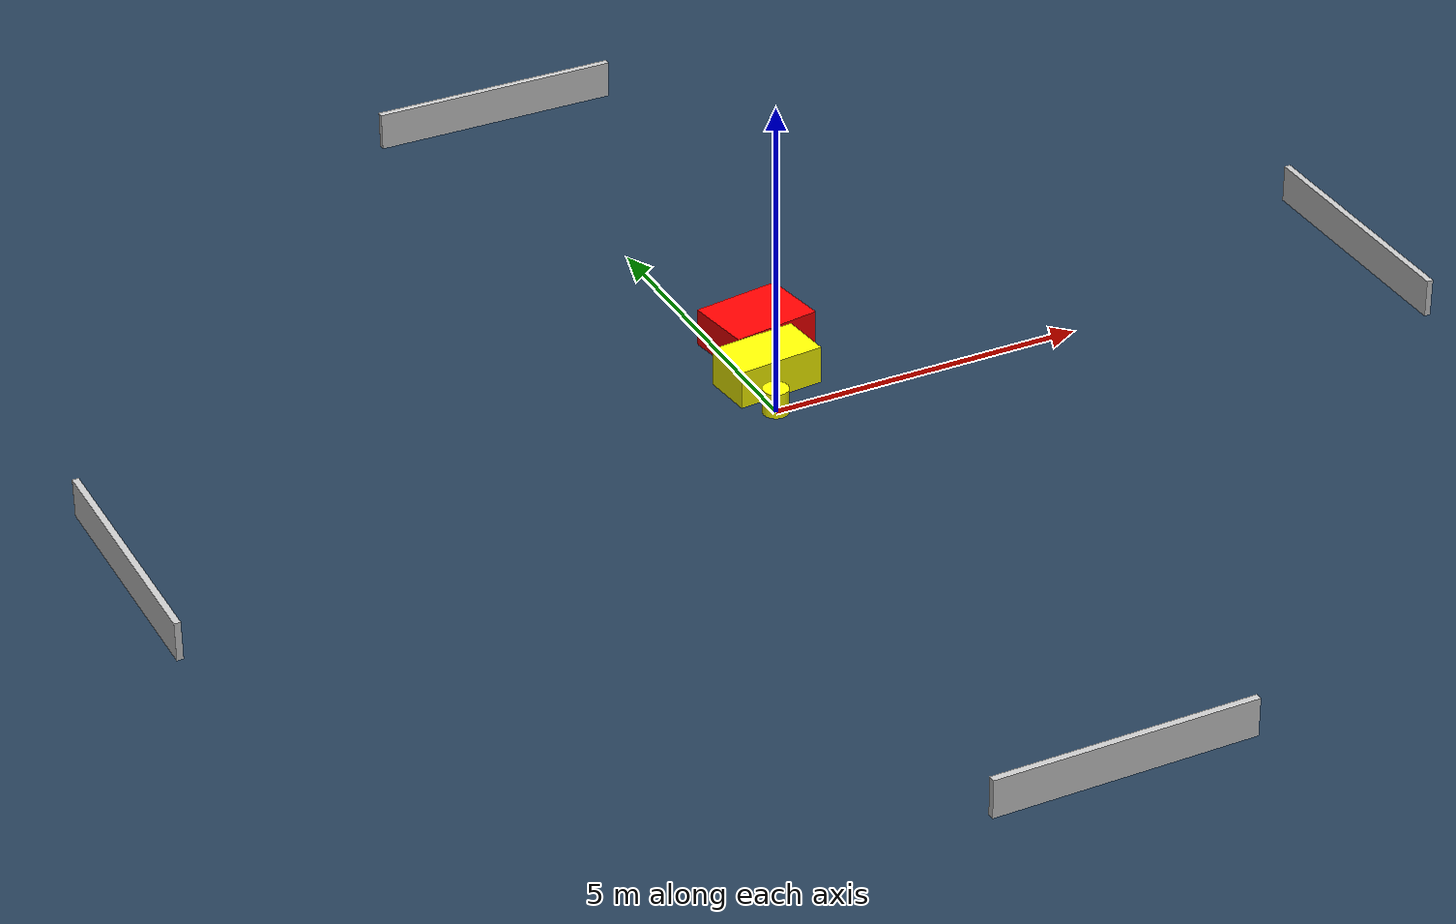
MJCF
<?xml version="1.0" ?>
<mujoco model="generated_environment">
  <option timestep="0.01" integrator="RK4" cone="elliptic"/>
  <default>
    <geom density="1"/>
  </default>
  <asset>
    <texture builtin="gradient" height="3072" name="skybox" rgb1="0.3 0.5 0.7" rgb2="0 0 0" type="skybox" width="512"/>
    <texture builtin="checker" height="300" name="groundplane" rgb1="0.2 0.3 0.4" rgb2="0.1 0.2 0.3" type="2d" width="300"/>
    <material name="groundplane" reflectance="0.2" texrepeat="5 5" texture="groundplane"/>
  </asset>
  <worldbody>
    <light dir="0 0 -1" directional="true" pos="0 0 1.5"/>
    <geom condim="3" friction="0.5 0.005 0.001" material="groundplane" name="floor" pos="0 0 0" size="0 0 0.05" type="plane"/>
    <body name="walls">
      <geom name="wall_1" condim="4" pos="-10.0 0.0 0.3" rgba="0.800000011920929 0.800000011920929 0.800000011920929 1.0" size="0.05 2.0 0.3" type="box"/>
      <geom name="wall_2" condim="4" pos="10.0 0.0 0.3" rgba="0.800000011920929 0.800000011920929 0.800000011920929 1.0" size="0.05 2.0 0.3" type="box"/>
      <geom name="wall_3" condim="4" pos="0.0 -10.0 0.3" rgba="0.800000011920929 0.800000011920929 0.800000011920929 1.0" size="2.0 0.05 0.3" type="box"/>
      <geom name="wall_4" condim="4" pos="0.0 10.0 0.3" rgba="0.800000011920929 0.800000011920929 0.800000011920929 1.0" size="2.0 0.05 0.3" type="box"/>
    </body>
    <body name="robot">
      <joint name="joint_x" type="slide" pos="0 0 0" axis="1 0 0"/>
      <joint name="joint_y" type="slide" pos="0 0 0" axis="0 1 0"/>
      <geom name="robot" type="cylinder" pos="0.0 0.0 0.2" size="0.2 0.2 0.0" mass="5.0" friction="1.0 0.005 0.0001" condim="4" rgba="1.0 1.0 0.0 1.0"/>
    </body>
    <body name="obstacle_1_movable">
      <geom name="obstacle_1_movable" condim="4" pos="0.24096900073102678 0.7718639824232708 0.3" euler="0 0 185.58686020759407" friction="0.0 0.005 0.001" rgba="1.0 1.0 0.0 1.0" size="0.6856928278191841 0.4039480478201683 0.3" type="box" mass="0.1"/>
      <joint type="free"/>
    </body>
    <body name="obstacle_2_static">
      <geom name="obstacle_2_static" condim="4" pos="0.5931657318408692 1.796260713936469 0.3" euler="0 0 188.59400919055062" friction="0.0 0.005 0.001" rgba="1.0 0.0 0.0 1.0" size="0.7005539337462041 0.5298495169436005 0.3" type="box"/>
    </body>
  </worldbody>
  <actuator>
    <motor name="actuator_x" joint="joint_x" gear="1" ctrlrange="-1 1"/>
    <motor name="actuator_y" joint="joint_y" gear="1" ctrlrange="-1 1"/>
  </actuator>
</mujoco>
